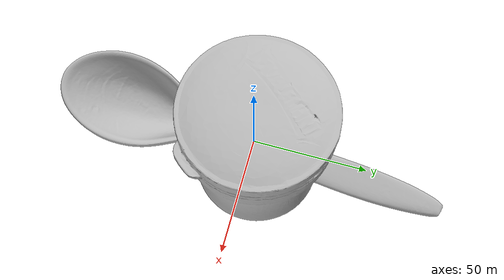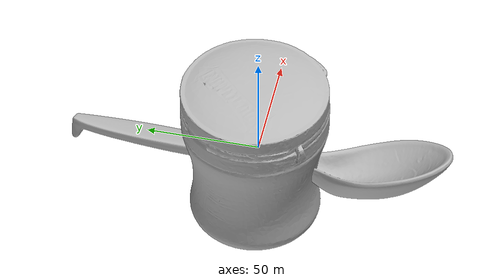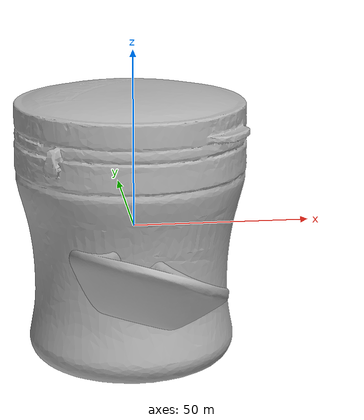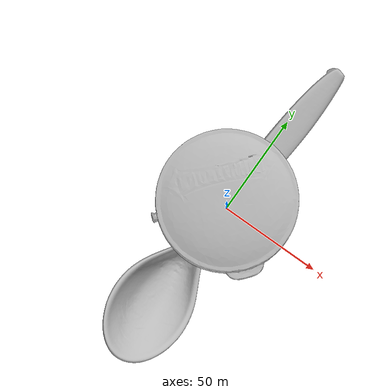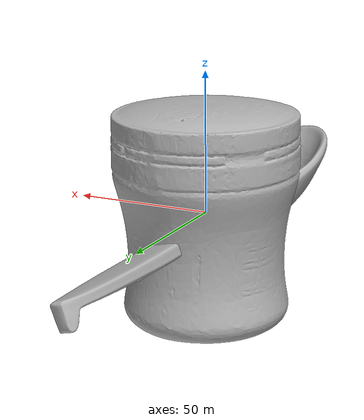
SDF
<sdf version="1.4">
 <world name="default">
  <light name="light1" type="point">
   <pose>0 0 1 0 0 0</pose>
   <diffuse>3 3 3 1</diffuse>
   <specular>3 3 3 1</specular>
  </light>
  <light name="light2" type="point">
   <pose>0 0.5 2 0 0 0</pose>
   <diffuse>1 1 1 1</diffuse>
   <specular>1 1 1 1</specular>
  </light>
  <light name="light3" type="point">
   <pose>0 0.5 2 0 0 0</pose>
   <diffuse>3 3 3 1</diffuse>
   <specular>3 3 3 1</specular>
  </light>
  <scene><ambient>0.7 0.7 0.7</ambient></scene>
  <model name="bottle1">
   <link name="link_bottle1">
    <collision name="default">
     <geometry>
      <mesh><uri>model://green_arrow/collision_meshes/collision.obj</uri><scale>1.0 1.0 1.0</scale></mesh>
     </geometry>
     <surface>
      <friction><ode><mu>0.5</mu><mu2>0.5</mu2></ode></friction>
      <contact><ode><max_vel>0</max_vel><min_depth>0.0001</min_depth><kp>1e8</kp></ode></contact>
     </surface>
    </collision>
    <visual name="default">
     <geometry>
      <mesh><uri>model://green_arrow/visual_meshes/visual.dae</uri><scale>1.0 1.0 1.0</scale></mesh>
     </geometry>
    </visual>
    <inertial>
     <mass>0.31872013211250305</mass>
     <pose>0.0005358478520065546 -0.0008270691032521427 0.002210969803854823 -0.06332250060756175 0.012985582117300467 0.6741007804522225</pose>
     <inertia>
      <ixx>0.00023120124</ixx>
      <iyy>0.000230851</iyy>
      <izz>0.0001492862</izz>
      <ixy>0</ixy>
      <ixz>0</ixz>
      <iyz>0</iyz>
     </inertia>
    </inertial>
   </link>
   <pose>0.019005881622433662 0.34887316823005676 0.038961656391620636 0.04528485516723395 0.02425655315322148 -2.9749773076247896</pose>
  </model>
  <model name="bottle2">
   <link name="link_bottle2">
    <collision name="default">
     <geometry>
      <mesh><uri>model://pigeon/collision_meshes/collision.obj</uri><scale>1.0 1.0 1.0</scale></mesh>
     </geometry>
     <surface>
      <friction><ode><mu>0.5</mu><mu2>0.5</mu2></ode></friction>
      <contact><ode><max_vel>0</max_vel><min_depth>0.0001</min_depth><kp>1e8</kp></ode></contact>
     </surface>
    </collision>
    <visual name="default">
     <geometry><mesh><uri>model://pigeon/visual_meshes/visual.dae</uri><scale>1.0 1.0 1.0</scale></mesh></geometry>
    </visual>
    <inertial>
     <mass>0.5279804468154907</mass>
     <pose>-9.675472392700613e-05 -0.0001927677367348224 -0.01593620702624321 -0.011704407495178063 -0.0012978199512556723 -0.04198835484465517</pose>
     <inertia>
      <ixx>0.0013198232</ixx>
      <iyy>0.0014089285</iyy>
      <izz>0.000271492</izz>
      <ixy>0</ixy>
      <ixz>0</ixz>
      <iyz>0</iyz>
     </inertia>
    </inertial>
   </link>
   <pose>0.23904858529567719 -0.13492897152900696 0.09864479303359985 2.412594960904885e-05 3.2862695136544728e-06 0.4119472554825811</pose>
  </model>
  <model name="silverware1">
   <link name="link_silverware1">
    <collision name="default">
     <geometry>
      <mesh><uri>model://doraemon_spoon/collision_meshes/collision.obj</uri><scale>1.0 1.0 1.0</scale></mesh>
     </geometry>
     <surface>
      <friction><ode><mu>0.5</mu><mu2>0.5</mu2></ode></friction>
      <contact><ode><max_vel>0</max_vel><min_depth>0.0001</min_depth><kp>1e8</kp></ode></contact>
     </surface>
    </collision>
    <visual name="default">
     <geometry>
      <mesh><uri>model://doraemon_spoon/visual_meshes/visual.dae</uri><scale>1.0 1.0 1.0</scale></mesh>
     </geometry>
    </visual>
    <inertial>
     <mass>0.014849366620182991</mass>
     <pose>-0.022165074944496155 -0.0006374582299031317 -0.0033325457479804754 -0.009146985479672626 0.07380416127774835 -0.014123827206003371</pose>
     <inertia>
      <ixx>1.1631438e-06</ixx>
      <iyy>3.3035012e-05</iyy>
      <izz>3.359665e-05</izz>
      <ixy>0</ixy>
      <ixz>0</ixz>
      <iyz>0</iyz>
     </inertia>
    </inertial>
   </link>
   <pose>0.2880404591560364 0.07026737183332443 0.014739403501152992 0.2790447831157255 -0.010338467171376653 1.5014723168643092</pose>
  </model>
  <model name="stationery1">
   <link name="link_stationery1">
    <collision name="default">
     <geometry>
      <mesh><uri>model://correction_fuid/collision_meshes/collision.obj</uri><scale>1.0 1.0 1.0</scale></mesh>
     </geometry>
     <surface>
      <friction><ode><mu>0.5</mu><mu2>0.5</mu2></ode></friction>
      <contact><ode><max_vel>0</max_vel><min_depth>0.0001</min_depth><kp>1e8</kp></ode></contact>
     </surface>
    </collision>
    <visual name="default">
     <geometry>
      <mesh><uri>model://correction_fuid/visual_meshes/visual.dae</uri><scale>1.0 1.0 1.0</scale></mesh>
     </geometry>
    </visual>
    <inertial>
     <mass>0.03422689810395241</mass>
     <pose>-0.00012557733862195164 -0.0009722901741042733 -0.001618212671019137 -0.010846609605282003 0.019488228935667613 -0.015992456651572746</pose>
     <inertia>
      <ixx>3.3149332e-05</ixx>
      <iyy>2.0062398e-06</iyy>
      <izz>3.4012115e-05</izz>
      <ixy>0</ixy>
      <ixz>0</ixz>
      <iyz>0</iyz>
     </inertia>
    </inertial>
   </link>
   <pose>-0.08687365800142288 0.11238512396812439 0.009632827714085579 -0.0017272459429612953 -0.05616804247689054 0.036071090038772215</pose>
  </model>
  <model name="bowl1">
   <link name="link_bowl1">
    <collision name="default">
     <geometry>
      <mesh><uri>model://doraemon_bowl/collision_meshes/collision.obj</uri><scale>1.0 1.0 1.0</scale></mesh>
     </geometry>
     <surface>
      <friction><ode><mu>0.5</mu><mu2>0.5</mu2></ode></friction>
      <contact><ode><max_vel>0</max_vel><min_depth>0.0001</min_depth><kp>1e8</kp></ode></contact>
     </surface>
    </collision>
    <visual name="default">
     <geometry>
      <mesh><uri>model://doraemon_bowl/visual_meshes/visual.dae</uri><scale>1.0 1.0 1.0</scale></mesh>
     </geometry>
    </visual>
    <inertial>
     <mass>0.10659078508615494</mass>
     <pose>-0.014629560522735119 0.00048571196384727955 -0.002086488762870431 -0.00509398386316645 -0.10568401530986889 -0.026426397124795446</pose>
     <inertia>
      <ixx>0.00014780516</ixx>
      <iyy>0.00019451023</iyy>
      <izz>0.00028617028</izz>
      <ixy>0</ixy>
      <ixz>0</ixz>
      <iyz>0</iyz>
     </inertia>
    </inertial>
   </link>
   <pose>-0.013104314915835857 0.025685962289571762 0.02590549923479557 0.008593264604360792 0.006343584278075871 1.6916904062127651</pose>
  </model>
  <model name="cup1">
   <link name="link_cup1">
    <collision name="default">
     <geometry>
      <mesh><uri>model://doraemon_cup/collision_meshes/collision.obj</uri><scale>1.0 1.0 1.0</scale></mesh>
     </geometry>
     <surface>
      <friction><ode><mu>0.5</mu><mu2>0.5</mu2></ode></friction>
      <contact><ode><max_vel>0</max_vel><min_depth>0.0001</min_depth><kp>1e8</kp></ode></contact>
     </surface>
    </collision>
    <visual name="default">
     <geometry>
      <mesh><uri>model://doraemon_cup/visual_meshes/visual.dae</uri><scale>1.0 1.0 1.0</scale></mesh>
     </geometry>
    </visual>
    <inertial>
     <mass>0.07019124925136566</mass>
     <pose>-0.0003292977053206414 -0.0016633619088679552 -0.0022522560320794582 0.19498543632694942 -0.013693723781048914 -0.3205469926711019</pose>
     <inertia>
      <ixx>9.599299e-05</ixx>
      <iyy>9.2830705e-05</iyy>
      <izz>7.5864096e-05</izz>
      <ixy>0</ixy>
      <ixz>0</ixz>
      <iyz>0</iyz>
     </inertia>
    </inertial>
   </link>
   <pose>0.2551499605178833 0.18420547246932983 0.04622995853424072 -0.012945756760209664 -0.007396168400049243 0.8324116005204888</pose>
  </model>
  <model name="plate1">
   <link name="link_plate1">
    <collision name="default">
     <geometry>
      <mesh><uri>model://hello_kitty_plate/collision_meshes/collision.obj</uri><scale>1.0 1.0 1.0</scale></mesh>
     </geometry>
     <surface>
      <friction><ode><mu>0.5</mu><mu2>0.5</mu2></ode></friction>
      <contact><ode><max_vel>0</max_vel><min_depth>0.0001</min_depth><kp>1e8</kp></ode></contact>
     </surface>
    </collision>
    <visual name="default">
     <geometry>
      <mesh><uri>model://hello_kitty_plate/visual_meshes/visual.dae</uri><scale>1.0 1.0 1.0</scale></mesh>
     </geometry>
    </visual>
    <inertial>
     <mass>0.03849242627620697</mass>
     <pose>0.007314295973628759 0.00028937432216480374 -0.0027947183698415756 -0.00010431794154861864 -0.007054443662422379 -0.014449020506613262</pose>
     <inertia>
      <ixx>7.4224925e-05</ixx>
      <iyy>0.00014008483</iyy>
      <izz>0.00021270475</izz>
      <ixy>0</ixy>
      <ixz>0</ixz>
      <iyz>0</iyz>
     </inertia>
    </inertial>
   </link>
   <pose>0.012032565660774708 -0.2961987257003784 0.008291447535157204 0.0004660620776617874 0.0041733181823665625 1.9233898705353591</pose>
  </model>
  <model name="box4">
   <link name="link_box4">
    <collision name="default">
     <geometry>
      <mesh><uri>model://wooden_puzzle2/collision_meshes/collision.obj</uri><scale>1.0 1.0 1.0</scale></mesh>
     </geometry>
     <surface>
      <friction><ode><mu>0.5</mu><mu2>0.5</mu2></ode></friction>
      <contact><ode><max_vel>0</max_vel><min_depth>0.0001</min_depth><kp>1e8</kp></ode></contact>
     </surface>
    </collision>
    <visual name="default">
     <geometry>
      <mesh><uri>model://wooden_puzzle2/visual_meshes/visual.dae</uri><scale>1.0 1.0 1.0</scale></mesh>
     </geometry>
    </visual>
    <inertial>
     <mass>0.023858843371272087</mass>
     <pose>2.7402536943554878e-05 4.997663199901581e-05 6.587122334167361e-05 -0.1920347142936951 0.6112821219690274 -0.6338705729322873</pose>
     <inertia>
      <ixx>4.4351036e-06</ixx>
      <iyy>4.557319e-06</iyy>
      <izz>4.4924864e-06</izz>
      <ixy>0</ixy>
      <ixz>0</ixz>
      <iyz>0</iyz>
     </inertia>
    </inertial>
   </link>
   <pose>0.2829338014125824 0.2491651326417923 0.016917727887630463 0.02084894424929226 0.0007206065311761713 1.6161245685913412</pose>
  </model>
  <physics type="ode">
   <max_contacts>50</max_contacts>
   <ode>
    <solver><type>quick</type><iters>75</iters></solver>
    <constraints>
     <contact_max_correcting_vel>0</contact_max_correcting_vel>
     <contact_surface_layer>0</contact_surface_layer>
    </constraints>
   </ode>
  </physics>
 </world>
</sdf>
